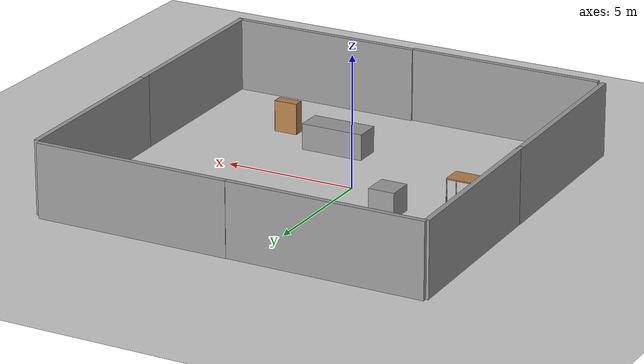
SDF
<sdf version="1.7">
 <world name="default">
  <light name="sun" type="directional">
   <pose>0 0 10 0 -0 0</pose>
   <diffuse>0.8 0.8 0.8 1</diffuse>
   <specular>0.1 0.1 0.1 1</specular>
   <attenuation>
    <range>1000</range>
    <constant>0.9</constant>
    <linear>0.01</linear>
    <quadratic>0.001</quadratic>
   </attenuation>
   <direction>-0.5 0.5 -1</direction>
   <spot><inner_angle>0</inner_angle><outer_angle>0</outer_angle><falloff>0</falloff></spot>
  </light>
  <model name="ground_plane">
   <static>1</static>
   <link name="link">
    <collision name="collision">
     <geometry><plane><normal>0 0 1</normal><size>100 100</size></plane></geometry>
     <surface><friction><ode><mu>100</mu><mu2>50</mu2></ode></friction></surface>
    </collision>
    <visual name="visual">
     <cast_shadows>0</cast_shadows>
     <geometry><plane><normal>0 0 1</normal><size>100 100</size></plane></geometry>
     <material>
      <script><uri>file://media/materials/scripts/gazebo.material</uri><name>Gazebo/Grey</name></script>
     </material>
    </visual>
   </link>
  </model>
  <gravity>0 0 -9.8</gravity>
  <magnetic_field>6e-06 2.3e-05 -4.2e-05</magnetic_field>
  <atmosphere type="adiabatic"/>
  <physics name="default_physics" default="0" type="ode">
   <max_step_size>0.001</max_step_size>
   <real_time_factor>1</real_time_factor>
   <real_time_update_rate>1000</real_time_update_rate>
  </physics>
  <scene><ambient>0.4 0.4 0.4 1</ambient><background>0.7 0.7 0.7 1</background><shadows>1</shadows></scene>
  <spherical_coordinates>
   <surface_model>EARTH_WGS84</surface_model>
   <latitude_deg>0</latitude_deg>
   <longitude_deg>0</longitude_deg>
   <elevation>0</elevation>
   <heading_deg>0</heading_deg>
  </spherical_coordinates>
  <model name="bookshelf">
   <static>1</static>
   <link name="link">
    <inertial><mass>1</mass></inertial>
    <collision name="back">
     <pose>0 0.005 0.6 0 -0 0</pose>
     <geometry><box><size>0.9 0.01 1.2</size></box></geometry>
    </collision>
    <visual name="visual1">
     <pose>0 0.005 0.6 0 -0 0</pose>
     <geometry><box><size>0.9 0.01 1.2</size></box></geometry>
     <material>
      <script><uri>file://media/materials/scripts/gazebo.material</uri><name>Gazebo/Wood</name></script>
     </material>
    </visual>
    <collision name="left_side">
     <pose>0.45 -0.195 0.6 0 -0 0</pose>
     <geometry><box><size>0.02 0.4 1.2</size></box></geometry>
    </collision>
    <visual name="visual2">
     <pose>0.45 -0.195 0.6 0 -0 0</pose>
     <geometry><box><size>0.02 0.4 1.2</size></box></geometry>
     <material>
      <script><uri>file://media/materials/scripts/gazebo.material</uri><name>Gazebo/Wood</name></script>
     </material>
    </visual>
    <collision name="right_side">
     <pose>-0.45 -0.195 0.6 0 -0 0</pose>
     <geometry><box><size>0.02 0.4 1.2</size></box></geometry>
    </collision>
    <visual name="visual3">
     <pose>-0.45 -0.195 0.6 0 -0 0</pose>
     <geometry><box><size>0.02 0.4 1.2</size></box></geometry>
     <material>
      <script><uri>file://media/materials/scripts/gazebo.material</uri><name>Gazebo/Wood</name></script>
     </material>
    </visual>
    <collision name="bottom">
     <pose>0 -0.195 0.03 0 -0 0</pose>
     <geometry><box><size>0.88 0.4 0.06</size></box></geometry>
    </collision>
    <visual name="visual4">
     <pose>0 -0.195 0.03 0 -0 0</pose>
     <geometry><box><size>0.88 0.4 0.06</size></box></geometry>
     <material>
      <script><uri>file://media/materials/scripts/gazebo.material</uri><name>Gazebo/Wood</name></script>
     </material>
    </visual>
    <collision name="top">
     <pose>0 -0.195 1.19 0 -0 0</pose>
     <geometry><box><size>0.88 0.4 0.02</size></box></geometry>
    </collision>
    <visual name="visual5">
     <pose>0 -0.195 1.19 0 -0 0</pose>
     <geometry><box><size>0.88 0.4 0.02</size></box></geometry>
     <material>
      <script><uri>file://media/materials/scripts/gazebo.material</uri><name>Gazebo/Wood</name></script>
     </material>
    </visual>
    <collision name="low_shelf">
     <pose>0 -0.195 0.43 0 -0 0</pose>
     <geometry><box><size>0.88 0.4 0.02</size></box></geometry>
    </collision>
    <visual name="visual6">
     <pose>0 -0.195 0.43 0 -0 0</pose>
     <geometry><box><size>0.88 0.4 0.02</size></box></geometry>
     <material>
      <script><uri>file://media/materials/scripts/gazebo.material</uri><name>Gazebo/Wood</name></script>
     </material>
    </visual>
    <collision name="high_shelf">
     <pose>0 -0.195 0.8 0 -0 0</pose>
     <geometry><box><size>0.88 0.4 0.02</size></box></geometry>
    </collision>
    <visual name="visual7">
     <pose>0 -0.195 0.8 0 -0 0</pose>
     <geometry><box><size>0.88 0.4 0.02</size></box></geometry>
     <material>
      <script><uri>file://media/materials/scripts/gazebo.material</uri><name>Gazebo/Wood</name></script>
     </material>
    </visual>
   </link>
   <pose>4.78412 -3.73836 0 0 -0 0</pose>
  </model>
  <model name="table">
   <static>0</static>
   <link name="link">
    <collision name="surface">
     <pose>0 0 1 0 -0 0</pose>
     <geometry><box><size>1.5 0.8 0.03</size></box></geometry>
     <surface><friction><ode><mu>0.6</mu><mu2>0.6</mu2></ode></friction></surface>
    </collision>
    <visual name="visual1">
     <pose>0 0 1 0 -0 0</pose>
     <geometry><box><size>1.4 0.8 0.04</size></box></geometry>
     <material>
      <script><uri>file://media/materials/scripts/gazebo.material</uri><name>Gazebo/Wood</name></script>
     </material>
    </visual>
    <collision name="front_left_leg">
     <pose>0.68 0.38 0.5 0 -0 0</pose>
     <geometry><cylinder><radius>0.02</radius><length>1</length></cylinder></geometry>
    </collision>
    <visual name="front_left_leg">
     <pose>0.68 0.38 0.5 0 -0 0</pose>
     <geometry><cylinder><radius>0.02</radius><length>1</length></cylinder></geometry>
     <material>
      <script><uri>file://media/materials/scripts/gazebo.material</uri><name>Gazebo/Grey</name></script>
     </material>
    </visual>
    <collision name="front_right_leg">
     <pose>0.68 -0.38 0.5 0 -0 0</pose>
     <geometry><cylinder><radius>0.02</radius><length>1</length></cylinder></geometry>
    </collision>
    <visual name="front_right_leg">
     <pose>0.68 -0.38 0.5 0 -0 0</pose>
     <geometry><cylinder><radius>0.02</radius><length>1</length></cylinder></geometry>
     <material>
      <script><uri>file://media/materials/scripts/gazebo.material</uri><name>Gazebo/Grey</name></script>
     </material>
    </visual>
    <collision name="back_right_leg">
     <pose>-0.68 -0.38 0.5 0 -0 0</pose>
     <geometry><cylinder><radius>0.02</radius><length>1</length></cylinder></geometry>
    </collision>
    <visual name="back_right_leg">
     <pose>-0.68 -0.38 0.5 0 -0 0</pose>
     <geometry><cylinder><radius>0.02</radius><length>1</length></cylinder></geometry>
     <material>
      <script><uri>file://media/materials/scripts/gazebo.material</uri><name>Gazebo/Grey</name></script>
     </material>
    </visual>
    <collision name="back_left_leg">
     <pose>-0.68 0.38 0.5 0 -0 0</pose>
     <geometry><cylinder><radius>0.02</radius><length>1</length></cylinder></geometry>
    </collision>
    <visual name="back_left_leg">
     <pose>-0.68 0.38 0.5 0 -0 0</pose>
     <geometry><cylinder><radius>0.02</radius><length>1</length></cylinder></geometry>
     <material>
      <script><uri>file://media/materials/scripts/gazebo.material</uri><name>Gazebo/Grey</name></script>
     </material>
    </visual>
    <inertial>
     <inertia><ixx>1</ixx><ixy>0</ixy><ixz>0</ixz><iyy>1</iyy><iyz>0</iyz><izz>1</izz></inertia>
     <mass>1</mass>
    </inertial>
   </link>
   <pose>-4.34248 -0.532954 -1e-06 -1e-06 1e-06 0</pose>
  </model>
  <model name="grey_wall">
   <static>1</static>
   <link name="link">
    <pose>0 0 1.4 0 -0 0</pose>
    <collision name="collision"><geometry><box><size>7.5 0.2 2.8</size></box></geometry></collision>
    <visual name="visual">
     <cast_shadows>0</cast_shadows>
     <geometry><box><size>7.5 0.2 2.8</size></box></geometry>
     <material>
      <script>
       <uri>model://grey_wall/materials/scripts</uri>
       <uri>model://grey_wall/materials/textures</uri>
       <name>vrc/grey_wall</name>
      </script>
     </material>
    </visual>
   </link>
   <pose>-2.98562 7.56318 0 0 -0 0</pose>
  </model>
  <model name="grey_wall_0">
   <static>1</static>
   <link name="link">
    <pose>0 0 1.4 0 -0 0</pose>
    <collision name="collision"><geometry><box><size>7.5 0.2 2.8</size></box></geometry></collision>
    <visual name="visual">
     <cast_shadows>0</cast_shadows>
     <geometry><box><size>7.5 0.2 2.8</size></box></geometry>
     <material>
      <script>
       <uri>model://grey_wall/materials/scripts</uri>
       <uri>model://grey_wall/materials/textures</uri>
       <name>vrc/grey_wall</name>
      </script>
     </material>
    </visual>
   </link>
   <pose>4.4759 7.57611 0 0 -0 0</pose>
  </model>
  <model name="grey_wall_1_clone">
   <static>1</static>
   <link name="link">
    <pose>0 0 1.4 0 -0 0</pose>
    <collision name="collision"><geometry><box><size>7.5 0.2 2.8</size></box></geometry></collision>
    <visual name="visual">
     <cast_shadows>0</cast_shadows>
     <geometry><box><size>7.5 0.2 2.8</size></box></geometry>
     <material>
      <script>
       <uri>model://grey_wall/materials/scripts</uri>
       <uri>model://grey_wall/materials/textures</uri>
       <name>vrc/grey_wall</name>
      </script>
     </material>
    </visual>
   </link>
   <pose>8.59187 -3.50451 0 0 0 -1.55072</pose>
  </model>
  <model name="grey_wall_0_clone">
   <static>1</static>
   <link name="link">
    <pose>0 0 1.4 0 -0 0</pose>
    <collision name="collision"><geometry><box><size>7.5 0.2 2.8</size></box></geometry></collision>
    <visual name="visual">
     <cast_shadows>0</cast_shadows>
     <geometry><box><size>7.5 0.2 2.8</size></box></geometry>
     <material>
      <script>
       <uri>model://grey_wall/materials/scripts</uri>
       <uri>model://grey_wall/materials/textures</uri>
       <name>vrc/grey_wall</name>
      </script>
     </material>
    </visual>
   </link>
   <pose>5.01759 -7.19501 0 0 -0 0</pose>
  </model>
  <model name="grey_wall_0_clone_clone">
   <static>1</static>
   <link name="link">
    <pose>0 0 1.4 0 -0 0</pose>
    <collision name="collision"><geometry><box><size>7.5 0.2 2.8</size></box></geometry></collision>
    <visual name="visual">
     <cast_shadows>0</cast_shadows>
     <geometry><box><size>7.5 0.2 2.8</size></box></geometry>
     <material>
      <script>
       <uri>model://grey_wall/materials/scripts</uri>
       <uri>model://grey_wall/materials/textures</uri>
       <name>vrc/grey_wall</name>
      </script>
     </material>
    </visual>
   </link>
   <pose>-2.46792 -7.26099 0 0 -0 0</pose>
  </model>
  <model name="grey_wall_1_clone_0">
   <static>1</static>
   <link name="link">
    <pose>0 0 1.4 0 -0 0</pose>
    <collision name="collision"><geometry><box><size>7.5 0.2 2.8</size></box></geometry></collision>
    <visual name="visual">
     <cast_shadows>0</cast_shadows>
     <geometry><box><size>7.5 0.2 2.8</size></box></geometry>
     <material>
      <script>
       <uri>model://grey_wall/materials/scripts</uri>
       <uri>model://grey_wall/materials/textures</uri>
       <name>vrc/grey_wall</name>
      </script>
     </material>
    </visual>
   </link>
   <pose>-6.65666 3.76424 0 0 0 -1.55072</pose>
  </model>
  <model name="grey_wall_1_clone_clone">
   <static>1</static>
   <link name="link">
    <pose>0 0 1.4 0 -0 0</pose>
    <collision name="collision"><geometry><box><size>7.5 0.2 2.8</size></box></geometry></collision>
    <visual name="visual">
     <cast_shadows>0</cast_shadows>
     <geometry><box><size>7.5 0.2 2.8</size></box></geometry>
     <material>
      <script>
       <uri>model://grey_wall/materials/scripts</uri>
       <uri>model://grey_wall/materials/textures</uri>
       <name>vrc/grey_wall</name>
      </script>
     </material>
    </visual>
   </link>
   <pose>-6.52088 -3.46176 0 0 0 -1.55072</pose>
  </model>
  <model name="unit_box">
   <pose>-2.17924 1.45665 0.499995 0 1e-05 0</pose>
   <link name="link">
    <inertial>
     <mass>1</mass>
     <inertia>
      <ixx>0.166667</ixx>
      <ixy>0</ixy>
      <ixz>0</ixz>
      <iyy>0.166667</iyy>
      <iyz>0</iyz>
      <izz>0.166667</izz>
     </inertia>
    </inertial>
    <collision name="collision"><geometry><box><size>1 1 1</size></box></geometry></collision>
    <visual name="visual">
     <geometry><box><size>1 1 1</size></box></geometry>
     <material>
      <script><name>Gazebo/Grey</name><uri>file://media/materials/scripts/gazebo.material</uri></script>
     </material>
    </visual>
   </link>
  </model>
  <model name="unit_box_0">
   <pose>2.2078 -3.03713 0.499945 0 -4.5e-05 0</pose>
   <link name="link">
    <inertial>
     <mass>1</mass>
     <inertia>
      <ixx>0.166667</ixx>
      <ixy>0</ixy>
      <ixz>0</ixz>
      <iyy>0.166667</iyy>
      <iyz>0</iyz>
      <izz>0.166667</izz>
     </inertia>
    </inertial>
    <collision name="collision"><geometry><box><size>2.44396 1 1</size></box></geometry></collision>
    <visual name="visual">
     <geometry><box><size>2.44396 1 1</size></box></geometry>
     <material>
      <script><name>Gazebo/Grey</name><uri>file://media/materials/scripts/gazebo.material</uri></script>
     </material>
    </visual>
   </link>
  </model>
  <model name="grey_wall_1_clone_clone_0">
   <static>1</static>
   <link name="link">
    <pose>0 0 1.4 0 -0 0</pose>
    <collision name="collision"><geometry><box><size>7.5 0.2 2.8</size></box></geometry></collision>
    <visual name="visual">
     <cast_shadows>0</cast_shadows>
     <geometry><box><size>7.5 0.2 2.8</size></box></geometry>
     <material>
      <script>
       <uri>model://grey_wall/materials/scripts</uri>
       <uri>model://grey_wall/materials/textures</uri>
       <name>vrc/grey_wall</name>
      </script>
     </material>
    </visual>
   </link>
   <pose>8.43823 3.67735 0 0 0 -1.55072</pose>
  </model>
 </world>
</sdf>
